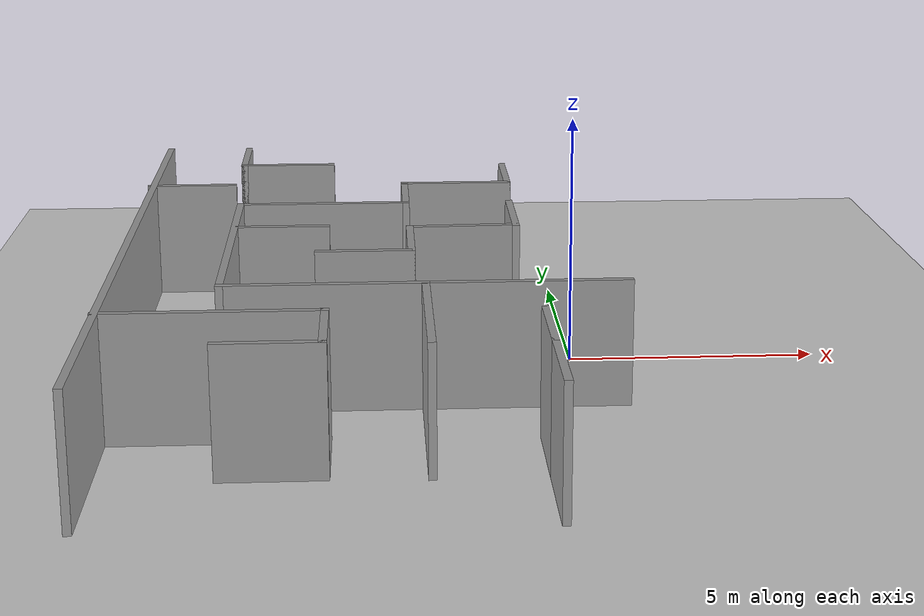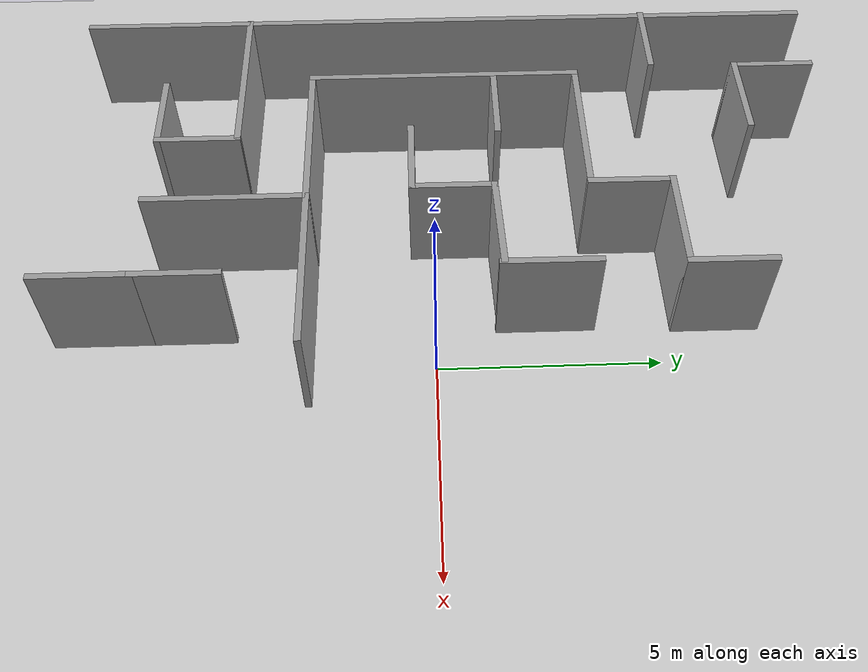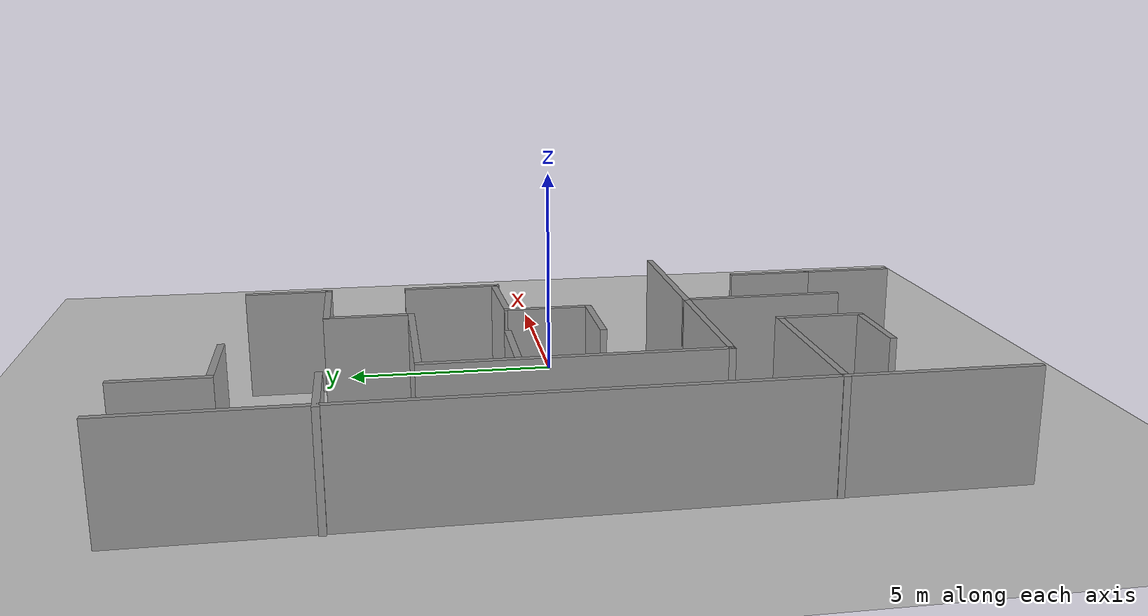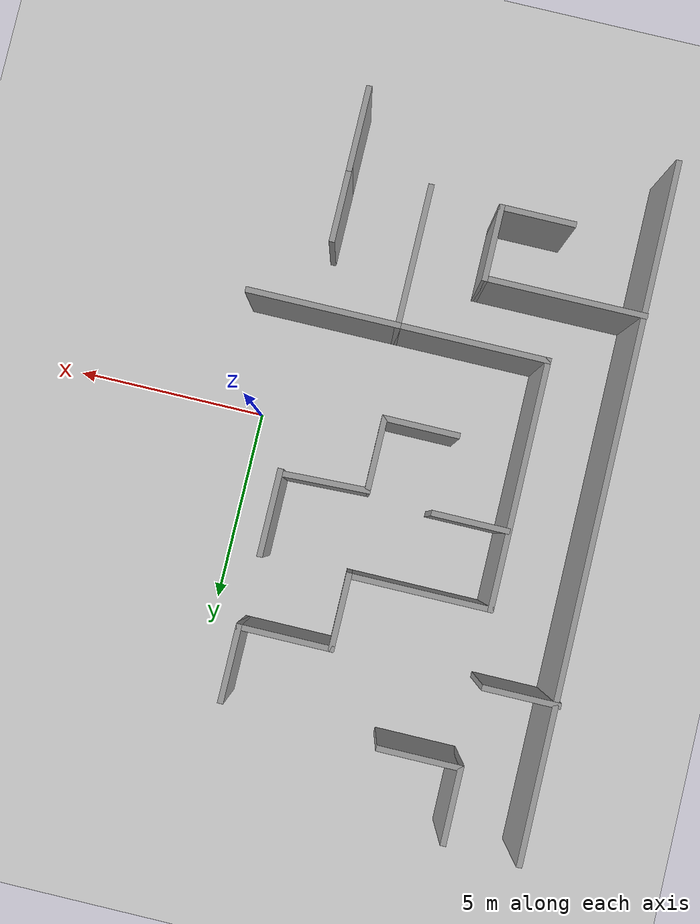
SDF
<sdf version="1.4">
 <world name="default">
  <model name="ground_plane">
   <static>1</static>
   <link name="link">
    <collision name="collision">
     <geometry><plane><normal>0 0 1</normal><size>100 100</size></plane></geometry>
     <surface><friction><ode><mu>100</mu><mu2>50</mu2></ode></friction></surface>
    </collision>
    <visual name="visual">
     <cast_shadows>0</cast_shadows>
     <geometry><plane><normal>0 0 1</normal><size>100 100</size></plane></geometry>
     <material>
      <script><uri>file://media/materials/scripts/gazebo.material</uri><name>Gazebo/Grey</name></script>
     </material>
    </visual>
   </link>
  </model>
  <model name="myMaze_map">
   <link name="Wall_23">
    <pose>-9.06058 0.614904 0 0 0 -1.5708</pose>
    <visual name="Wall_23_Visual">
     <pose>0 0 1.25 0 -0 0</pose>
     <geometry><box><size>18 0.15 2.5</size></box></geometry>
     <material>
      <script><uri>file://media/materials/scripts/gazebo.material</uri><name>Gazebo/Grey</name></script>
      <ambient>1 1 1 1</ambient>
      <diffuse>0.7 0.7 0.7 1</diffuse>
      <specular>0.01 0.01 0.01 1</specular>
      <emissive>0 0 0 1</emissive>
     </material>
    </visual>
    <collision name="Wall_23_Collision">
     <pose>0 0 1.25 0 -0 0</pose>
     <geometry><box><size>18 0.15 2.5</size></box></geometry>
     <surface>
      <friction>
       <ode><mu>1</mu><mu2>1</mu2><fdir1>0 0 0</fdir1><slip1>0</slip1><slip2>0</slip2></ode>
       <torsional>
        <coefficient>1</coefficient>
        <patch_radius>0</patch_radius>
        <surface_radius>0</surface_radius>
        <use_patch_radius>1</use_patch_radius>
        <ode><slip>0</slip></ode>
       </torsional>
      </friction>
      <bounce><restitution_coefficient>0</restitution_coefficient><threshold>1e+06</threshold></bounce>
      <contact>
       <collide_without_contact>0</collide_without_contact>
       <collide_without_contact_bitmask>1</collide_without_contact_bitmask>
       <collide_bitmask>1</collide_bitmask>
       <ode>
        <soft_cfm>0</soft_cfm>
        <soft_erp>0.2</soft_erp>
        <kp>1e+13</kp>
        <kd>1</kd>
        <max_vel>0.01</max_vel>
        <min_depth>0</min_depth>
       </ode>
       <bullet>
        <split_impulse>1</split_impulse>
        <split_impulse_penetration_threshold>-0.01</split_impulse_penetration_threshold>
        <soft_cfm>0</soft_cfm>
        <soft_erp>0.2</soft_erp>
        <kp>1e+13</kp>
        <kd>1</kd>
       </bullet>
      </contact>
     </surface>
    </collision>
   </link>
   <link name="Wall_25">
    <pose>-7.02908 -4.3298 0 0 -0 0</pose>
    <visual name="Wall_25_Visual">
     <pose>0 0 1.25 0 -0 0</pose>
     <geometry><box><size>4.25 0.15 2.5</size></box></geometry>
     <material>
      <script><uri>file://media/materials/scripts/gazebo.material</uri><name>Gazebo/Grey</name></script>
      <ambient>1 1 1 1</ambient>
      <diffuse>0.7 0.7 0.7 1</diffuse>
      <specular>0.01 0.01 0.01 1</specular>
      <emissive>0 0 0 1</emissive>
     </material>
    </visual>
    <collision name="Wall_25_Collision">
     <pose>0 0 1.25 0 -0 0</pose>
     <geometry><box><size>4.25 0.15 2.5</size></box></geometry>
     <surface>
      <friction>
       <ode><mu>1</mu><mu2>1</mu2><fdir1>0 0 0</fdir1><slip1>0</slip1><slip2>0</slip2></ode>
       <torsional>
        <coefficient>1</coefficient>
        <patch_radius>0</patch_radius>
        <surface_radius>0</surface_radius>
        <use_patch_radius>1</use_patch_radius>
        <ode><slip>0</slip></ode>
       </torsional>
      </friction>
      <bounce><restitution_coefficient>0</restitution_coefficient><threshold>1e+06</threshold></bounce>
      <contact>
       <collide_without_contact>0</collide_without_contact>
       <collide_without_contact_bitmask>1</collide_without_contact_bitmask>
       <collide_bitmask>1</collide_bitmask>
       <ode>
        <soft_cfm>0</soft_cfm>
        <soft_erp>0.2</soft_erp>
        <kp>1e+13</kp>
        <kd>1</kd>
        <max_vel>0.01</max_vel>
        <min_depth>0</min_depth>
       </ode>
       <bullet>
        <split_impulse>1</split_impulse>
        <split_impulse_penetration_threshold>-0.01</split_impulse_penetration_threshold>
        <soft_cfm>0</soft_cfm>
        <soft_erp>0.2</soft_erp>
        <kp>1e+13</kp>
        <kd>1</kd>
       </bullet>
      </contact>
     </surface>
    </collision>
   </link>
   <link name="Wall_26">
    <pose>-4.97908 -5.2548 0 0 0 -1.5708</pose>
    <visual name="Wall_26_Visual">
     <pose>0 0 1.25 0 -0 0</pose>
     <geometry><box><size>2 0.15 2.5</size></box></geometry>
     <material>
      <script><uri>file://media/materials/scripts/gazebo.material</uri><name>Gazebo/Grey</name></script>
      <ambient>1 1 1 1</ambient>
      <diffuse>0.7 0.7 0.7 1</diffuse>
      <specular>0.01 0.01 0.01 1</specular>
      <emissive>0 0 0 1</emissive>
     </material>
    </visual>
    <collision name="Wall_26_Collision">
     <pose>0 0 1.25 0 -0 0</pose>
     <geometry><box><size>2 0.15 2.5</size></box></geometry>
     <surface>
      <friction>
       <ode><mu>1</mu><mu2>1</mu2><fdir1>0 0 0</fdir1><slip1>0</slip1><slip2>0</slip2></ode>
       <torsional>
        <coefficient>1</coefficient>
        <patch_radius>0</patch_radius>
        <surface_radius>0</surface_radius>
        <use_patch_radius>1</use_patch_radius>
        <ode><slip>0</slip></ode>
       </torsional>
      </friction>
      <bounce><restitution_coefficient>0</restitution_coefficient><threshold>1e+06</threshold></bounce>
      <contact>
       <collide_without_contact>0</collide_without_contact>
       <collide_without_contact_bitmask>1</collide_without_contact_bitmask>
       <collide_bitmask>1</collide_bitmask>
       <ode>
        <soft_cfm>0</soft_cfm>
        <soft_erp>0.2</soft_erp>
        <kp>1e+13</kp>
        <kd>1</kd>
        <max_vel>0.01</max_vel>
        <min_depth>0</min_depth>
       </ode>
       <bullet>
        <split_impulse>1</split_impulse>
        <split_impulse_penetration_threshold>-0.01</split_impulse_penetration_threshold>
        <soft_cfm>0</soft_cfm>
        <soft_erp>0.2</soft_erp>
        <kp>1e+13</kp>
        <kd>1</kd>
       </bullet>
      </contact>
     </surface>
    </collision>
   </link>
   <link name="Wall_27">
    <pose>-5.90408 -6.1798 0 0 -0 3.14159</pose>
    <visual name="Wall_27_Visual">
     <pose>0 0 1.25 0 -0 0</pose>
     <geometry><box><size>2 0.15 2.5</size></box></geometry>
     <material>
      <script><uri>file://media/materials/scripts/gazebo.material</uri><name>Gazebo/Grey</name></script>
      <ambient>1 1 1 1</ambient>
      <diffuse>0.7 0.7 0.7 1</diffuse>
      <specular>0.01 0.01 0.01 1</specular>
      <emissive>0 0 0 1</emissive>
     </material>
    </visual>
    <collision name="Wall_27_Collision">
     <pose>0 0 1.25 0 -0 0</pose>
     <geometry><box><size>2 0.15 2.5</size></box></geometry>
     <surface>
      <friction>
       <ode><mu>1</mu><mu2>1</mu2><fdir1>0 0 0</fdir1><slip1>0</slip1><slip2>0</slip2></ode>
       <torsional>
        <coefficient>1</coefficient>
        <patch_radius>0</patch_radius>
        <surface_radius>0</surface_radius>
        <use_patch_radius>1</use_patch_radius>
        <ode><slip>0</slip></ode>
       </torsional>
      </friction>
      <bounce><restitution_coefficient>0</restitution_coefficient><threshold>1e+06</threshold></bounce>
      <contact>
       <collide_without_contact>0</collide_without_contact>
       <collide_without_contact_bitmask>1</collide_without_contact_bitmask>
       <collide_bitmask>1</collide_bitmask>
       <ode>
        <soft_cfm>0</soft_cfm>
        <soft_erp>0.2</soft_erp>
        <kp>1e+13</kp>
        <kd>1</kd>
        <max_vel>0.01</max_vel>
        <min_depth>0</min_depth>
       </ode>
       <bullet>
        <split_impulse>1</split_impulse>
        <split_impulse_penetration_threshold>-0.01</split_impulse_penetration_threshold>
        <soft_cfm>0</soft_cfm>
        <soft_erp>0.2</soft_erp>
        <kp>1e+13</kp>
        <kd>1</kd>
       </bullet>
      </contact>
     </surface>
    </collision>
   </link>
   <link name="Wall_29">
    <pose>-1.02842 -5.33571 0 0 0 -1.5708</pose>
    <visual name="Wall_29_Visual">
     <pose>0 0 1.25 0 -0 0</pose>
     <geometry><box><size>2 0.15 2.5</size></box></geometry>
     <material>
      <script><uri>file://media/materials/scripts/gazebo.material</uri><name>Gazebo/Grey</name></script>
      <ambient>1 1 1 1</ambient>
      <diffuse>0.7 0.7 0.7 1</diffuse>
      <specular>0.01 0.01 0.01 1</specular>
      <emissive>0 0 0 1</emissive>
     </material>
    </visual>
    <collision name="Wall_29_Collision">
     <pose>0 0 1.25 0 -0 0</pose>
     <geometry><box><size>2 0.15 2.5</size></box></geometry>
     <surface>
      <friction>
       <ode><mu>1</mu><mu2>1</mu2><fdir1>0 0 0</fdir1><slip1>0</slip1><slip2>0</slip2></ode>
       <torsional>
        <coefficient>1</coefficient>
        <patch_radius>0</patch_radius>
        <surface_radius>0</surface_radius>
        <use_patch_radius>1</use_patch_radius>
        <ode><slip>0</slip></ode>
       </torsional>
      </friction>
      <bounce><restitution_coefficient>0</restitution_coefficient><threshold>1e+06</threshold></bounce>
      <contact>
       <collide_without_contact>0</collide_without_contact>
       <collide_without_contact_bitmask>1</collide_without_contact_bitmask>
       <collide_bitmask>1</collide_bitmask>
       <ode>
        <soft_cfm>0</soft_cfm>
        <soft_erp>0.2</soft_erp>
        <kp>1e+13</kp>
        <kd>1</kd>
        <max_vel>0.01</max_vel>
        <min_depth>0</min_depth>
       </ode>
       <bullet>
        <split_impulse>1</split_impulse>
        <split_impulse_penetration_threshold>-0.01</split_impulse_penetration_threshold>
        <soft_cfm>0</soft_cfm>
        <soft_erp>0.2</soft_erp>
        <kp>1e+13</kp>
        <kd>1</kd>
       </bullet>
      </contact>
     </surface>
    </collision>
   </link>
   <link name="Wall_35">
    <pose>-1.02842 -7.31071 0 0 0 -1.5708</pose>
    <visual name="Wall_35_Visual">
     <pose>0 0 1.25 0 -0 0</pose>
     <geometry><box><size>2.25 0.15 2.5</size></box></geometry>
     <material>
      <script><uri>file://media/materials/scripts/gazebo.material</uri><name>Gazebo/Grey</name></script>
      <ambient>1 1 1 1</ambient>
      <diffuse>0.7 0.7 0.7 1</diffuse>
      <specular>0.01 0.01 0.01 1</specular>
      <emissive>0 0 0 1</emissive>
     </material>
    </visual>
    <collision name="Wall_35_Collision">
     <pose>0 0 1.25 0 -0 0</pose>
     <geometry><box><size>2.25 0.15 2.5</size></box></geometry>
     <surface>
      <friction>
       <ode><mu>1</mu><mu2>1</mu2><fdir1>0 0 0</fdir1><slip1>0</slip1><slip2>0</slip2></ode>
       <torsional>
        <coefficient>1</coefficient>
        <patch_radius>0</patch_radius>
        <surface_radius>0</surface_radius>
        <use_patch_radius>1</use_patch_radius>
        <ode><slip>0</slip></ode>
       </torsional>
      </friction>
      <bounce><restitution_coefficient>0</restitution_coefficient><threshold>1e+06</threshold></bounce>
      <contact>
       <collide_without_contact>0</collide_without_contact>
       <collide_without_contact_bitmask>1</collide_without_contact_bitmask>
       <collide_bitmask>1</collide_bitmask>
       <ode>
        <soft_cfm>0</soft_cfm>
        <soft_erp>0.2</soft_erp>
        <kp>1e+13</kp>
        <kd>1</kd>
        <max_vel>0.01</max_vel>
        <min_depth>0</min_depth>
       </ode>
       <bullet>
        <split_impulse>1</split_impulse>
        <split_impulse_penetration_threshold>-0.01</split_impulse_penetration_threshold>
        <soft_cfm>0</soft_cfm>
        <soft_erp>0.2</soft_erp>
        <kp>1e+13</kp>
        <kd>1</kd>
       </bullet>
      </contact>
     </surface>
    </collision>
   </link>
   <link name="Wall_43">
    <pose>-3.13211 -4.47166 0 0 -0 1.5708</pose>
    <visual name="Wall_43_Visual">
     <pose>0 0 1.25 0 -0 0</pose>
     <geometry><box><size>3.75 0.15 2.5</size></box></geometry>
     <material>
      <script><uri>file://media/materials/scripts/gazebo.material</uri><name>Gazebo/Grey</name></script>
      <ambient>1 1 1 1</ambient>
      <diffuse>0.7 0.7 0.7 1</diffuse>
      <specular>0.01 0.01 0.01 1</specular>
      <emissive>0 0 0 1</emissive>
     </material>
    </visual>
    <collision name="Wall_43_Collision">
     <pose>0 0 1.25 0 -0 0</pose>
     <geometry><box><size>3.75 0.15 2.5</size></box></geometry>
     <surface>
      <friction>
       <ode><mu>1</mu><mu2>1</mu2><fdir1>0 0 0</fdir1><slip1>0</slip1><slip2>0</slip2></ode>
       <torsional>
        <coefficient>1</coefficient>
        <patch_radius>0</patch_radius>
        <surface_radius>0</surface_radius>
        <use_patch_radius>1</use_patch_radius>
        <ode><slip>0</slip></ode>
       </torsional>
      </friction>
      <bounce><restitution_coefficient>0</restitution_coefficient><threshold>1e+06</threshold></bounce>
      <contact>
       <collide_without_contact>0</collide_without_contact>
       <collide_without_contact_bitmask>1</collide_without_contact_bitmask>
       <collide_bitmask>1</collide_bitmask>
       <ode>
        <soft_cfm>0</soft_cfm>
        <soft_erp>0.2</soft_erp>
        <kp>1e+13</kp>
        <kd>1</kd>
        <max_vel>0.01</max_vel>
        <min_depth>0</min_depth>
       </ode>
       <bullet>
        <split_impulse>1</split_impulse>
        <split_impulse_penetration_threshold>-0.01</split_impulse_penetration_threshold>
        <soft_cfm>0</soft_cfm>
        <soft_erp>0.2</soft_erp>
        <kp>1e+13</kp>
        <kd>1</kd>
       </bullet>
      </contact>
     </surface>
    </collision>
   </link>
   <link name="Wall_44">
    <pose>-5.05711 -2.67166 0 0 -0 3.14159</pose>
    <visual name="Wall_44_Visual">
     <pose>0 0 1.25 0 -0 0</pose>
     <geometry><box><size>4 0.15 2.5</size></box></geometry>
     <material>
      <script><uri>file://media/materials/scripts/gazebo.material</uri><name>Gazebo/Grey</name></script>
      <ambient>1 1 1 1</ambient>
      <diffuse>0.7 0.7 0.7 1</diffuse>
      <specular>0.01 0.01 0.01 1</specular>
      <emissive>0 0 0 1</emissive>
     </material>
    </visual>
    <collision name="Wall_44_Collision">
     <pose>0 0 1.25 0 -0 0</pose>
     <geometry><box><size>4 0.15 2.5</size></box></geometry>
     <surface>
      <friction>
       <ode><mu>1</mu><mu2>1</mu2><fdir1>0 0 0</fdir1><slip1>0</slip1><slip2>0</slip2></ode>
       <torsional>
        <coefficient>1</coefficient>
        <patch_radius>0</patch_radius>
        <surface_radius>0</surface_radius>
        <use_patch_radius>1</use_patch_radius>
        <ode><slip>0</slip></ode>
       </torsional>
      </friction>
      <bounce><restitution_coefficient>0</restitution_coefficient><threshold>1e+06</threshold></bounce>
      <contact>
       <collide_without_contact>0</collide_without_contact>
       <collide_without_contact_bitmask>1</collide_without_contact_bitmask>
       <collide_bitmask>1</collide_bitmask>
       <ode>
        <soft_cfm>0</soft_cfm>
        <soft_erp>0.2</soft_erp>
        <kp>1e+13</kp>
        <kd>1</kd>
        <max_vel>0.01</max_vel>
        <min_depth>0</min_depth>
       </ode>
       <bullet>
        <split_impulse>1</split_impulse>
        <split_impulse_penetration_threshold>-0.01</split_impulse_penetration_threshold>
        <soft_cfm>0</soft_cfm>
        <soft_erp>0.2</soft_erp>
        <kp>1e+13</kp>
        <kd>1</kd>
       </bullet>
      </contact>
     </surface>
    </collision>
   </link>
   <link name="Wall_45">
    <pose>-6.98211 0.503335 0 0 -0 1.5708</pose>
    <visual name="Wall_45_Visual">
     <pose>0 0 1.25 0 -0 0</pose>
     <geometry><box><size>6.5 0.15 2.5</size></box></geometry>
     <material>
      <script><uri>file://media/materials/scripts/gazebo.material</uri><name>Gazebo/Grey</name></script>
      <ambient>1 1 1 1</ambient>
      <diffuse>0.7 0.7 0.7 1</diffuse>
      <specular>0.01 0.01 0.01 1</specular>
      <emissive>0 0 0 1</emissive>
     </material>
    </visual>
    <collision name="Wall_45_Collision">
     <pose>0 0 1.25 0 -0 0</pose>
     <geometry><box><size>6.5 0.15 2.5</size></box></geometry>
     <surface>
      <friction>
       <ode><mu>1</mu><mu2>1</mu2><fdir1>0 0 0</fdir1><slip1>0</slip1><slip2>0</slip2></ode>
       <torsional>
        <coefficient>1</coefficient>
        <patch_radius>0</patch_radius>
        <surface_radius>0</surface_radius>
        <use_patch_radius>1</use_patch_radius>
        <ode><slip>0</slip></ode>
       </torsional>
      </friction>
      <bounce><restitution_coefficient>0</restitution_coefficient><threshold>1e+06</threshold></bounce>
      <contact>
       <collide_without_contact>0</collide_without_contact>
       <collide_without_contact_bitmask>1</collide_without_contact_bitmask>
       <collide_bitmask>1</collide_bitmask>
       <ode>
        <soft_cfm>0</soft_cfm>
        <soft_erp>0.2</soft_erp>
        <kp>1e+13</kp>
        <kd>1</kd>
        <max_vel>0.01</max_vel>
        <min_depth>0</min_depth>
       </ode>
       <bullet>
        <split_impulse>1</split_impulse>
        <split_impulse_penetration_threshold>-0.01</split_impulse_penetration_threshold>
        <soft_cfm>0</soft_cfm>
        <soft_erp>0.2</soft_erp>
        <kp>1e+13</kp>
        <kd>1</kd>
       </bullet>
      </contact>
     </surface>
    </collision>
   </link>
   <link name="Wall_46">
    <pose>-5.18211 3.67834 0 0 -0 0</pose>
    <visual name="Wall_46_Visual">
     <pose>0 0 1.25 0 -0 0</pose>
     <geometry><box><size>3.75 0.15 2.5</size></box></geometry>
     <material>
      <script><uri>file://media/materials/scripts/gazebo.material</uri><name>Gazebo/Grey</name></script>
      <ambient>1 1 1 1</ambient>
      <diffuse>0.7 0.7 0.7 1</diffuse>
      <specular>0.01 0.01 0.01 1</specular>
      <emissive>0 0 0 1</emissive>
     </material>
    </visual>
    <collision name="Wall_46_Collision">
     <pose>0 0 1.25 0 -0 0</pose>
     <geometry><box><size>3.75 0.15 2.5</size></box></geometry>
     <surface>
      <friction>
       <ode><mu>1</mu><mu2>1</mu2><fdir1>0 0 0</fdir1><slip1>0</slip1><slip2>0</slip2></ode>
       <torsional>
        <coefficient>1</coefficient>
        <patch_radius>0</patch_radius>
        <surface_radius>0</surface_radius>
        <use_patch_radius>1</use_patch_radius>
        <ode><slip>0</slip></ode>
       </torsional>
      </friction>
      <bounce><restitution_coefficient>0</restitution_coefficient><threshold>1e+06</threshold></bounce>
      <contact>
       <collide_without_contact>0</collide_without_contact>
       <collide_without_contact_bitmask>1</collide_without_contact_bitmask>
       <collide_bitmask>1</collide_bitmask>
       <ode>
        <soft_cfm>0</soft_cfm>
        <soft_erp>0.2</soft_erp>
        <kp>1e+13</kp>
        <kd>1</kd>
        <max_vel>0.01</max_vel>
        <min_depth>0</min_depth>
       </ode>
       <bullet>
        <split_impulse>1</split_impulse>
        <split_impulse_penetration_threshold>-0.01</split_impulse_penetration_threshold>
        <soft_cfm>0</soft_cfm>
        <soft_erp>0.2</soft_erp>
        <kp>1e+13</kp>
        <kd>1</kd>
       </bullet>
      </contact>
     </surface>
    </collision>
   </link>
   <link name="Wall_47">
    <pose>-3.38211 4.60333 0 0 -0 1.5708</pose>
    <visual name="Wall_47_Visual">
     <pose>0 0 1.25 0 -0 0</pose>
     <geometry><box><size>2 0.15 2.5</size></box></geometry>
     <material>
      <script><uri>file://media/materials/scripts/gazebo.material</uri><name>Gazebo/Grey</name></script>
      <ambient>1 1 1 1</ambient>
      <diffuse>0.7 0.7 0.7 1</diffuse>
      <specular>0.01 0.01 0.01 1</specular>
      <emissive>0 0 0 1</emissive>
     </material>
    </visual>
    <collision name="Wall_47_Collision">
     <pose>0 0 1.25 0 -0 0</pose>
     <geometry><box><size>2 0.15 2.5</size></box></geometry>
     <surface>
      <friction>
       <ode><mu>1</mu><mu2>1</mu2><fdir1>0 0 0</fdir1><slip1>0</slip1><slip2>0</slip2></ode>
       <torsional>
        <coefficient>1</coefficient>
        <patch_radius>0</patch_radius>
        <surface_radius>0</surface_radius>
        <use_patch_radius>1</use_patch_radius>
        <ode><slip>0</slip></ode>
       </torsional>
      </friction>
      <bounce><restitution_coefficient>0</restitution_coefficient><threshold>1e+06</threshold></bounce>
      <contact>
       <collide_without_contact>0</collide_without_contact>
       <collide_without_contact_bitmask>1</collide_without_contact_bitmask>
       <collide_bitmask>1</collide_bitmask>
       <ode>
        <soft_cfm>0</soft_cfm>
        <soft_erp>0.2</soft_erp>
        <kp>1e+13</kp>
        <kd>1</kd>
        <max_vel>0.01</max_vel>
        <min_depth>0</min_depth>
       </ode>
       <bullet>
        <split_impulse>1</split_impulse>
        <split_impulse_penetration_threshold>-0.01</split_impulse_penetration_threshold>
        <soft_cfm>0</soft_cfm>
        <soft_erp>0.2</soft_erp>
        <kp>1e+13</kp>
        <kd>1</kd>
       </bullet>
      </contact>
     </surface>
    </collision>
   </link>
   <link name="Wall_48">
    <pose>-2.20711 5.52834 0 0 -0 0</pose>
    <visual name="Wall_48_Visual">
     <pose>0 0 1.25 0 -0 0</pose>
     <geometry><box><size>2.5 0.15 2.5</size></box></geometry>
     <material>
      <script><uri>file://media/materials/scripts/gazebo.material</uri><name>Gazebo/Grey</name></script>
      <ambient>1 1 1 1</ambient>
      <diffuse>0.7 0.7 0.7 1</diffuse>
      <specular>0.01 0.01 0.01 1</specular>
      <emissive>0 0 0 1</emissive>
     </material>
    </visual>
    <collision name="Wall_48_Collision">
     <pose>0 0 1.25 0 -0 0</pose>
     <geometry><box><size>2.5 0.15 2.5</size></box></geometry>
     <surface>
      <friction>
       <ode><mu>1</mu><mu2>1</mu2><fdir1>0 0 0</fdir1><slip1>0</slip1><slip2>0</slip2></ode>
       <torsional>
        <coefficient>1</coefficient>
        <patch_radius>0</patch_radius>
        <surface_radius>0</surface_radius>
        <use_patch_radius>1</use_patch_radius>
        <ode><slip>0</slip></ode>
       </torsional>
      </friction>
      <bounce><restitution_coefficient>0</restitution_coefficient><threshold>1e+06</threshold></bounce>
      <contact>
       <collide_without_contact>0</collide_without_contact>
       <collide_without_contact_bitmask>1</collide_without_contact_bitmask>
       <collide_bitmask>1</collide_bitmask>
       <ode>
        <soft_cfm>0</soft_cfm>
        <soft_erp>0.2</soft_erp>
        <kp>1e+13</kp>
        <kd>1</kd>
        <max_vel>0.01</max_vel>
        <min_depth>0</min_depth>
       </ode>
       <bullet>
        <split_impulse>1</split_impulse>
        <split_impulse_penetration_threshold>-0.01</split_impulse_penetration_threshold>
        <soft_cfm>0</soft_cfm>
        <soft_erp>0.2</soft_erp>
        <kp>1e+13</kp>
        <kd>1</kd>
       </bullet>
      </contact>
     </surface>
    </collision>
   </link>
   <link name="Wall_49">
    <pose>-1.03211 6.45334 0 0 -0 1.5708</pose>
    <visual name="Wall_49_Visual">
     <pose>0 0 1.25 0 -0 0</pose>
     <geometry><box><size>2 0.15 2.5</size></box></geometry>
     <material>
      <script><uri>file://media/materials/scripts/gazebo.material</uri><name>Gazebo/Grey</name></script>
      <ambient>1 1 1 1</ambient>
      <diffuse>0.7 0.7 0.7 1</diffuse>
      <specular>0.01 0.01 0.01 1</specular>
      <emissive>0 0 0 1</emissive>
     </material>
    </visual>
    <collision name="Wall_49_Collision">
     <pose>0 0 1.25 0 -0 0</pose>
     <geometry><box><size>2 0.15 2.5</size></box></geometry>
     <surface>
      <friction>
       <ode><mu>1</mu><mu2>1</mu2><fdir1>0 0 0</fdir1><slip1>0</slip1><slip2>0</slip2></ode>
       <torsional>
        <coefficient>1</coefficient>
        <patch_radius>0</patch_radius>
        <surface_radius>0</surface_radius>
        <use_patch_radius>1</use_patch_radius>
        <ode><slip>0</slip></ode>
       </torsional>
      </friction>
      <bounce><restitution_coefficient>0</restitution_coefficient><threshold>1e+06</threshold></bounce>
      <contact>
       <collide_without_contact>0</collide_without_contact>
       <collide_without_contact_bitmask>1</collide_without_contact_bitmask>
       <collide_bitmask>1</collide_bitmask>
       <ode>
        <soft_cfm>0</soft_cfm>
        <soft_erp>0.2</soft_erp>
        <kp>1e+13</kp>
        <kd>1</kd>
        <max_vel>0.01</max_vel>
        <min_depth>0</min_depth>
       </ode>
       <bullet>
        <split_impulse>1</split_impulse>
        <split_impulse_penetration_threshold>-0.01</split_impulse_penetration_threshold>
        <soft_cfm>0</soft_cfm>
        <soft_erp>0.2</soft_erp>
        <kp>1e+13</kp>
        <kd>1</kd>
       </bullet>
      </contact>
     </surface>
    </collision>
   </link>
   <link name="Wall_51">
    <pose>-6.00993 1.69808 0 0 -0 0</pose>
    <visual name="Wall_51_Visual">
     <pose>0 0 1.25 0 -0 0</pose>
     <geometry><box><size>2 0.15 2.5</size></box></geometry>
     <material>
      <script><uri>file://media/materials/scripts/gazebo.material</uri><name>Gazebo/Grey</name></script>
      <ambient>1 1 1 1</ambient>
      <diffuse>0.7 0.7 0.7 1</diffuse>
      <specular>0.01 0.01 0.01 1</specular>
      <emissive>0 0 0 1</emissive>
     </material>
    </visual>
    <collision name="Wall_51_Collision">
     <pose>0 0 1.25 0 -0 0</pose>
     <geometry><box><size>2 0.15 2.5</size></box></geometry>
     <surface>
      <friction>
       <ode><mu>1</mu><mu2>1</mu2><fdir1>0 0 0</fdir1><slip1>0</slip1><slip2>0</slip2></ode>
       <torsional>
        <coefficient>1</coefficient>
        <patch_radius>0</patch_radius>
        <surface_radius>0</surface_radius>
        <use_patch_radius>1</use_patch_radius>
        <ode><slip>0</slip></ode>
       </torsional>
      </friction>
      <bounce><restitution_coefficient>0</restitution_coefficient><threshold>1e+06</threshold></bounce>
      <contact>
       <collide_without_contact>0</collide_without_contact>
       <collide_without_contact_bitmask>1</collide_without_contact_bitmask>
       <collide_bitmask>1</collide_bitmask>
       <ode>
        <soft_cfm>0</soft_cfm>
        <soft_erp>0.2</soft_erp>
        <kp>1e+13</kp>
        <kd>1</kd>
        <max_vel>0.01</max_vel>
        <min_depth>0</min_depth>
       </ode>
       <bullet>
        <split_impulse>1</split_impulse>
        <split_impulse_penetration_threshold>-0.01</split_impulse_penetration_threshold>
        <soft_cfm>0</soft_cfm>
        <soft_erp>0.2</soft_erp>
        <kp>1e+13</kp>
        <kd>1</kd>
       </bullet>
      </contact>
     </surface>
    </collision>
   </link>
   <link name="Wall_53">
    <pose>-4.27034 -0.324696 0 0 -0 0</pose>
    <visual name="Wall_53_Visual">
     <pose>0 0 1.25 0 -0 0</pose>
     <geometry><box><size>2 0.15 2.5</size></box></geometry>
     <material>
      <script><uri>file://media/materials/scripts/gazebo.material</uri><name>Gazebo/Grey</name></script>
      <ambient>1 1 1 1</ambient>
      <diffuse>0.7 0.7 0.7 1</diffuse>
      <specular>0.01 0.01 0.01 1</specular>
      <emissive>0 0 0 1</emissive>
     </material>
    </visual>
    <collision name="Wall_53_Collision">
     <pose>0 0 1.25 0 -0 0</pose>
     <geometry><box><size>2 0.15 2.5</size></box></geometry>
     <surface>
      <friction>
       <ode><mu>1</mu><mu2>1</mu2><fdir1>0 0 0</fdir1><slip1>0</slip1><slip2>0</slip2></ode>
       <torsional>
        <coefficient>1</coefficient>
        <patch_radius>0</patch_radius>
        <surface_radius>0</surface_radius>
        <use_patch_radius>1</use_patch_radius>
        <ode><slip>0</slip></ode>
       </torsional>
      </friction>
      <bounce><restitution_coefficient>0</restitution_coefficient><threshold>1e+06</threshold></bounce>
      <contact>
       <collide_without_contact>0</collide_without_contact>
       <collide_without_contact_bitmask>1</collide_without_contact_bitmask>
       <collide_bitmask>1</collide_bitmask>
       <ode>
        <soft_cfm>0</soft_cfm>
        <soft_erp>0.2</soft_erp>
        <kp>1e+13</kp>
        <kd>1</kd>
        <max_vel>0.01</max_vel>
        <min_depth>0</min_depth>
       </ode>
       <bullet>
        <split_impulse>1</split_impulse>
        <split_impulse_penetration_threshold>-0.01</split_impulse_penetration_threshold>
        <soft_cfm>0</soft_cfm>
        <soft_erp>0.2</soft_erp>
        <kp>1e+13</kp>
        <kd>1</kd>
       </bullet>
      </contact>
     </surface>
    </collision>
   </link>
   <link name="Wall_54">
    <pose>-3.34534 0.600304 0 0 -0 1.5708</pose>
    <visual name="Wall_54_Visual">
     <pose>0 0 1.25 0 -0 0</pose>
     <geometry><box><size>2 0.15 2.5</size></box></geometry>
     <material>
      <script><uri>file://media/materials/scripts/gazebo.material</uri><name>Gazebo/Grey</name></script>
      <ambient>1 1 1 1</ambient>
      <diffuse>0.7 0.7 0.7 1</diffuse>
      <specular>0.01 0.01 0.01 1</specular>
      <emissive>0 0 0 1</emissive>
     </material>
    </visual>
    <collision name="Wall_54_Collision">
     <pose>0 0 1.25 0 -0 0</pose>
     <geometry><box><size>2 0.15 2.5</size></box></geometry>
     <surface>
      <friction>
       <ode><mu>1</mu><mu2>1</mu2><fdir1>0 0 0</fdir1><slip1>0</slip1><slip2>0</slip2></ode>
       <torsional>
        <coefficient>1</coefficient>
        <patch_radius>0</patch_radius>
        <surface_radius>0</surface_radius>
        <use_patch_radius>1</use_patch_radius>
        <ode><slip>0</slip></ode>
       </torsional>
      </friction>
      <bounce><restitution_coefficient>0</restitution_coefficient><threshold>1e+06</threshold></bounce>
      <contact>
       <collide_without_contact>0</collide_without_contact>
       <collide_without_contact_bitmask>1</collide_without_contact_bitmask>
       <collide_bitmask>1</collide_bitmask>
       <ode>
        <soft_cfm>0</soft_cfm>
        <soft_erp>0.2</soft_erp>
        <kp>1e+13</kp>
        <kd>1</kd>
        <max_vel>0.01</max_vel>
        <min_depth>0</min_depth>
       </ode>
       <bullet>
        <split_impulse>1</split_impulse>
        <split_impulse_penetration_threshold>-0.01</split_impulse_penetration_threshold>
        <soft_cfm>0</soft_cfm>
        <soft_erp>0.2</soft_erp>
        <kp>1e+13</kp>
        <kd>1</kd>
       </bullet>
      </contact>
     </surface>
    </collision>
   </link>
   <link name="Wall_55">
    <pose>-2.25489 1.56576 0 0 -0 0.037083</pose>
    <visual name="Wall_55_Visual">
     <pose>0 0 1.25 0 -0 0</pose>
     <geometry><box><size>2.33241 0.15 2.5</size></box></geometry>
     <material>
      <script><uri>file://media/materials/scripts/gazebo.material</uri><name>Gazebo/Grey</name></script>
      <ambient>1 1 1 1</ambient>
      <diffuse>0.7 0.7 0.7 1</diffuse>
      <specular>0.01 0.01 0.01 1</specular>
      <emissive>0 0 0 1</emissive>
     </material>
    </visual>
    <collision name="Wall_55_Collision">
     <pose>0 0 1.25 0 -0 0</pose>
     <geometry><box><size>2.33241 0.15 2.5</size></box></geometry>
     <surface>
      <friction>
       <ode><mu>1</mu><mu2>1</mu2><fdir1>0 0 0</fdir1><slip1>0</slip1><slip2>0</slip2></ode>
       <torsional>
        <coefficient>1</coefficient>
        <patch_radius>0</patch_radius>
        <surface_radius>0</surface_radius>
        <use_patch_radius>1</use_patch_radius>
        <ode><slip>0</slip></ode>
       </torsional>
      </friction>
      <bounce><restitution_coefficient>0</restitution_coefficient><threshold>1e+06</threshold></bounce>
      <contact>
       <collide_without_contact>0</collide_without_contact>
       <collide_without_contact_bitmask>1</collide_without_contact_bitmask>
       <collide_bitmask>1</collide_bitmask>
       <ode>
        <soft_cfm>0</soft_cfm>
        <soft_erp>0.2</soft_erp>
        <kp>1e+13</kp>
        <kd>1</kd>
        <max_vel>0.01</max_vel>
        <min_depth>0</min_depth>
       </ode>
       <bullet>
        <split_impulse>1</split_impulse>
        <split_impulse_penetration_threshold>-0.01</split_impulse_penetration_threshold>
        <soft_cfm>0</soft_cfm>
        <soft_erp>0.2</soft_erp>
        <kp>1e+13</kp>
        <kd>1</kd>
       </bullet>
      </contact>
     </surface>
    </collision>
   </link>
   <link name="Wall_56">
    <pose>-1.12398 2.61576 0 0 -0 1.5708</pose>
    <visual name="Wall_56_Visual">
     <pose>0 0 1.25 0 -0 0</pose>
     <geometry><box><size>2.25 0.15 2.5</size></box></geometry>
     <material>
      <script><uri>file://media/materials/scripts/gazebo.material</uri><name>Gazebo/Grey</name></script>
      <ambient>1 1 1 1</ambient>
      <diffuse>0.7 0.7 0.7 1</diffuse>
      <specular>0.01 0.01 0.01 1</specular>
      <emissive>0 0 0 1</emissive>
     </material>
    </visual>
    <collision name="Wall_56_Collision">
     <pose>0 0 1.25 0 -0 0</pose>
     <geometry><box><size>2.25 0.15 2.5</size></box></geometry>
     <surface>
      <friction>
       <ode><mu>1</mu><mu2>1</mu2><fdir1>0 0 0</fdir1><slip1>0</slip1><slip2>0</slip2></ode>
       <torsional>
        <coefficient>1</coefficient>
        <patch_radius>0</patch_radius>
        <surface_radius>0</surface_radius>
        <use_patch_radius>1</use_patch_radius>
        <ode><slip>0</slip></ode>
       </torsional>
      </friction>
      <bounce><restitution_coefficient>0</restitution_coefficient><threshold>1e+06</threshold></bounce>
      <contact>
       <collide_without_contact>0</collide_without_contact>
       <collide_without_contact_bitmask>1</collide_without_contact_bitmask>
       <collide_bitmask>1</collide_bitmask>
       <ode>
        <soft_cfm>0</soft_cfm>
        <soft_erp>0.2</soft_erp>
        <kp>1e+13</kp>
        <kd>1</kd>
        <max_vel>0.01</max_vel>
        <min_depth>0</min_depth>
       </ode>
       <bullet>
        <split_impulse>1</split_impulse>
        <split_impulse_penetration_threshold>-0.01</split_impulse_penetration_threshold>
        <soft_cfm>0</soft_cfm>
        <soft_erp>0.2</soft_erp>
        <kp>1e+13</kp>
        <kd>1</kd>
       </bullet>
      </contact>
     </surface>
    </collision>
   </link>
   <link name="Wall_63">
    <pose>-8.19453 5.58182 0 0 -0 0</pose>
    <visual name="Wall_63_Visual">
     <pose>0 0 1.25 0 -0 0</pose>
     <geometry><box><size>2 0.15 2.5</size></box></geometry>
     <material>
      <script><uri>file://media/materials/scripts/gazebo.material</uri><name>Gazebo/Grey</name></script>
      <ambient>1 1 1 1</ambient>
      <diffuse>0.7 0.7 0.7 1</diffuse>
      <specular>0.01 0.01 0.01 1</specular>
      <emissive>0 0 0 1</emissive>
     </material>
    </visual>
    <collision name="Wall_63_Collision">
     <pose>0 0 1.25 0 -0 0</pose>
     <geometry><box><size>2 0.15 2.5</size></box></geometry>
     <surface>
      <friction>
       <ode><mu>1</mu><mu2>1</mu2><fdir1>0 0 0</fdir1><slip1>0</slip1><slip2>0</slip2></ode>
       <torsional>
        <coefficient>1</coefficient>
        <patch_radius>0</patch_radius>
        <surface_radius>0</surface_radius>
        <use_patch_radius>1</use_patch_radius>
        <ode><slip>0</slip></ode>
       </torsional>
      </friction>
      <bounce><restitution_coefficient>0</restitution_coefficient><threshold>1e+06</threshold></bounce>
      <contact>
       <collide_without_contact>0</collide_without_contact>
       <collide_without_contact_bitmask>1</collide_without_contact_bitmask>
       <collide_bitmask>1</collide_bitmask>
       <ode>
        <soft_cfm>0</soft_cfm>
        <soft_erp>0.2</soft_erp>
        <kp>1e+13</kp>
        <kd>1</kd>
        <max_vel>0.01</max_vel>
        <min_depth>0</min_depth>
       </ode>
       <bullet>
        <split_impulse>1</split_impulse>
        <split_impulse_penetration_threshold>-0.01</split_impulse_penetration_threshold>
        <soft_cfm>0</soft_cfm>
        <soft_erp>0.2</soft_erp>
        <kp>1e+13</kp>
        <kd>1</kd>
       </bullet>
      </contact>
     </surface>
    </collision>
   </link>
   <link name="Wall_65">
    <pose>-7.13721 8.54055 0 0 0 -1.5708</pose>
    <visual name="Wall_65_Visual">
     <pose>0 0 1.25 0 -0 0</pose>
     <geometry><box><size>2 0.15 2.5</size></box></geometry>
     <material>
      <script><uri>file://media/materials/scripts/gazebo.material</uri><name>Gazebo/Grey</name></script>
      <ambient>1 1 1 1</ambient>
      <diffuse>0.7 0.7 0.7 1</diffuse>
      <specular>0.01 0.01 0.01 1</specular>
      <emissive>0 0 0 1</emissive>
     </material>
    </visual>
    <collision name="Wall_65_Collision">
     <pose>0 0 1.25 0 -0 0</pose>
     <geometry><box><size>2 0.15 2.5</size></box></geometry>
     <surface>
      <friction>
       <ode><mu>1</mu><mu2>1</mu2><fdir1>0 0 0</fdir1><slip1>0</slip1><slip2>0</slip2></ode>
       <torsional>
        <coefficient>1</coefficient>
        <patch_radius>0</patch_radius>
        <surface_radius>0</surface_radius>
        <use_patch_radius>1</use_patch_radius>
        <ode><slip>0</slip></ode>
       </torsional>
      </friction>
      <bounce><restitution_coefficient>0</restitution_coefficient><threshold>1e+06</threshold></bounce>
      <contact>
       <collide_without_contact>0</collide_without_contact>
       <collide_without_contact_bitmask>1</collide_without_contact_bitmask>
       <collide_bitmask>1</collide_bitmask>
       <ode>
        <soft_cfm>0</soft_cfm>
        <soft_erp>0.2</soft_erp>
        <kp>1e+13</kp>
        <kd>1</kd>
        <max_vel>0.01</max_vel>
        <min_depth>0</min_depth>
       </ode>
       <bullet>
        <split_impulse>1</split_impulse>
        <split_impulse_penetration_threshold>-0.01</split_impulse_penetration_threshold>
        <soft_cfm>0</soft_cfm>
        <soft_erp>0.2</soft_erp>
        <kp>1e+13</kp>
        <kd>1</kd>
       </bullet>
      </contact>
     </surface>
    </collision>
   </link>
   <link name="Wall_68">
    <pose>-6.11107 7.61555 0 0 -0 0</pose>
    <visual name="Wall_68_Visual">
     <pose>0 0 1.25 0 -0 0</pose>
     <geometry><box><size>2.20228 0.15 2.5</size></box></geometry>
     <material>
      <script><uri>file://media/materials/scripts/gazebo.material</uri><name>Gazebo/Grey</name></script>
      <ambient>1 1 1 1</ambient>
      <diffuse>0.7 0.7 0.7 1</diffuse>
      <specular>0.01 0.01 0.01 1</specular>
      <emissive>0 0 0 1</emissive>
     </material>
    </visual>
    <collision name="Wall_68_Collision">
     <pose>0 0 1.25 0 -0 0</pose>
     <geometry><box><size>2.20228 0.15 2.5</size></box></geometry>
     <surface>
      <friction>
       <ode><mu>1</mu><mu2>1</mu2><fdir1>0 0 0</fdir1><slip1>0</slip1><slip2>0</slip2></ode>
       <torsional>
        <coefficient>1</coefficient>
        <patch_radius>0</patch_radius>
        <surface_radius>0</surface_radius>
        <use_patch_radius>1</use_patch_radius>
        <ode><slip>0</slip></ode>
       </torsional>
      </friction>
      <bounce><restitution_coefficient>0</restitution_coefficient><threshold>1e+06</threshold></bounce>
      <contact>
       <collide_without_contact>0</collide_without_contact>
       <collide_without_contact_bitmask>1</collide_without_contact_bitmask>
       <collide_bitmask>1</collide_bitmask>
       <ode>
        <soft_cfm>0</soft_cfm>
        <soft_erp>0.2</soft_erp>
        <kp>1e+13</kp>
        <kd>1</kd>
        <max_vel>0.01</max_vel>
        <min_depth>0</min_depth>
       </ode>
       <bullet>
        <split_impulse>1</split_impulse>
        <split_impulse_penetration_threshold>-0.01</split_impulse_penetration_threshold>
        <soft_cfm>0</soft_cfm>
        <soft_erp>0.2</soft_erp>
        <kp>1e+13</kp>
        <kd>1</kd>
       </bullet>
      </contact>
     </surface>
    </collision>
   </link>
   <link name="Wall_85">
    <pose>-1.20711 -2.67166 0 0 -0 0</pose>
    <visual name="Wall_85_Visual">
     <pose>0 0 1.25 0 -0 0</pose>
     <geometry><box><size>4 0.15 2.5</size></box></geometry>
     <material>
      <script><uri>file://media/materials/scripts/gazebo.material</uri><name>Gazebo/Grey</name></script>
      <ambient>1 1 1 1</ambient>
      <diffuse>0.7 0.7 0.7 1</diffuse>
      <specular>0.01 0.01 0.01 1</specular>
      <emissive>0 0 0 1</emissive>
     </material>
    </visual>
    <collision name="Wall_85_Collision">
     <pose>0 0 1.25 0 -0 0</pose>
     <geometry><box><size>4 0.15 2.5</size></box></geometry>
     <surface>
      <friction>
       <ode><mu>1</mu><mu2>1</mu2><fdir1>0 0 0</fdir1><slip1>0</slip1><slip2>0</slip2></ode>
       <torsional>
        <coefficient>1</coefficient>
        <patch_radius>0</patch_radius>
        <surface_radius>0</surface_radius>
        <use_patch_radius>1</use_patch_radius>
        <ode><slip>0</slip></ode>
       </torsional>
      </friction>
      <bounce><restitution_coefficient>0</restitution_coefficient><threshold>1e+06</threshold></bounce>
      <contact>
       <collide_without_contact>0</collide_without_contact>
       <collide_without_contact_bitmask>1</collide_without_contact_bitmask>
       <collide_bitmask>1</collide_bitmask>
       <ode>
        <soft_cfm>0</soft_cfm>
        <soft_erp>0.2</soft_erp>
        <kp>1e+13</kp>
        <kd>1</kd>
        <max_vel>0.01</max_vel>
        <min_depth>0</min_depth>
       </ode>
       <bullet>
        <split_impulse>1</split_impulse>
        <split_impulse_penetration_threshold>-0.01</split_impulse_penetration_threshold>
        <soft_cfm>0</soft_cfm>
        <soft_erp>0.2</soft_erp>
        <kp>1e+13</kp>
        <kd>1</kd>
       </bullet>
      </contact>
     </surface>
    </collision>
   </link>
   <static>1</static>
   <pose>0.106324 -0.12249 0 0 -0 0</pose>
  </model>
 </world>
</sdf>
